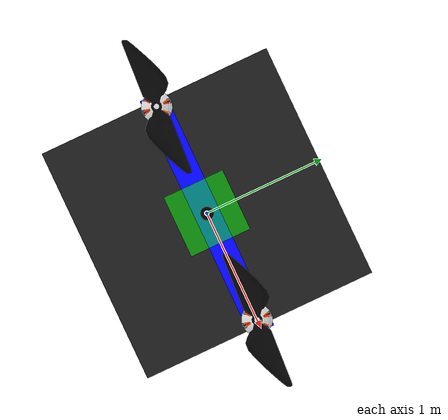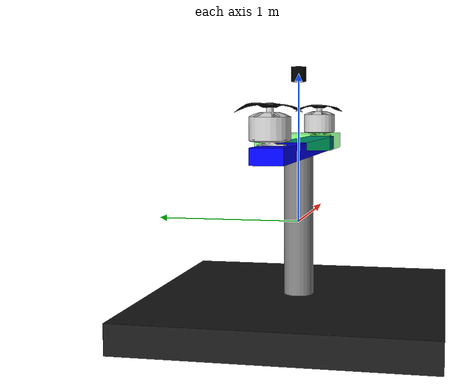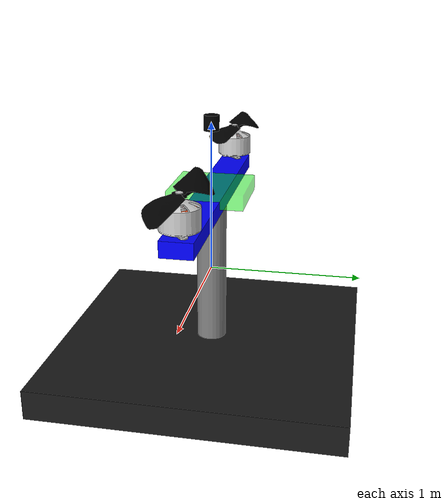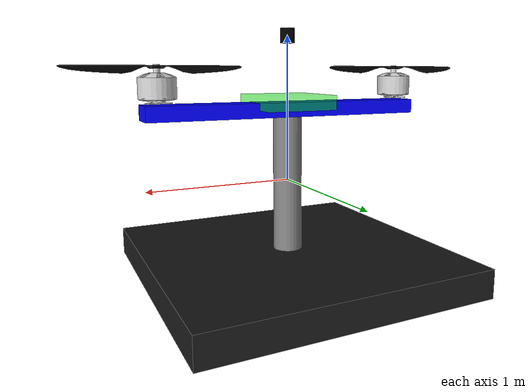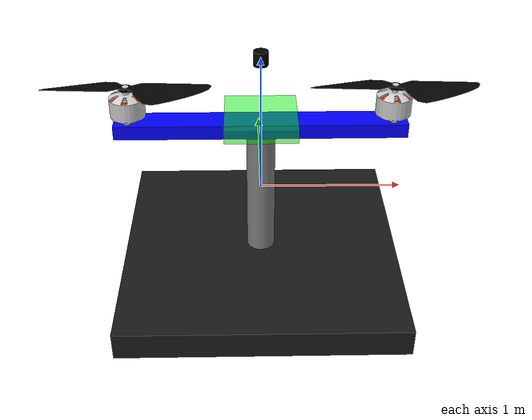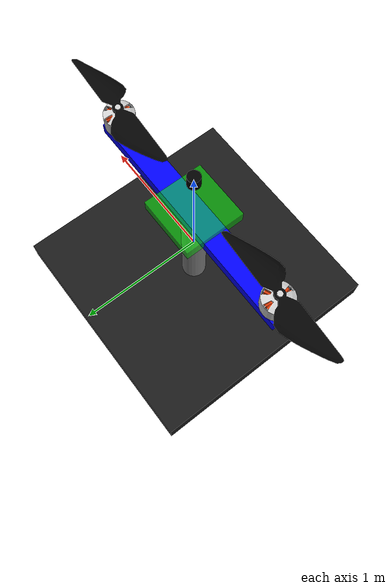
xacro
<?xml version="1.0"?>
<robot name="jungkat" xmlns:xacro="http://ros.org/wiki/xacro">

  <!-- Stabilizer -->
  <link name="beban_base">
    <visual>
      <origin xyz="0 0 -0.3" rpy="0 0 0"/>
      <geometry><box size="2 2 0.2"/></geometry>
      <material name="hitam"><color rgba="0.1 0.1 0.1 1"/></material>
    </visual>
    <collision>
      <origin xyz="0 0 -0.3" rpy="0 0 0"/>
      <geometry><box size="2 2 0.2"/></geometry>
    </collision>
    <inertial>
      <mass value="100"/>
      <inertia ixx="10" iyy="10" izz="10" ixy="0" ixz="0" iyz="0"/>
    </inertial>
  </link>

  <joint name="beban_fixed_joint" type="fixed">
    <parent link="base_link"/>
    <child link="beban_base"/>
    <origin xyz="0 0 -0.3" rpy="0 0 0"/>
  </joint>

  <!-- Base -->
  <link name="base_link">
    <visual>
      <origin xyz="0 0 0" rpy="0 0 0"/>
      <geometry><cylinder length="1" radius="0.1"/></geometry>
      <material name="gray"><color rgba="0.5 0.5 0.5 1"/></material>
    </visual>
    <collision>
      <origin xyz="0 0 0" rpy="0 0 0"/>
      <geometry><cylinder length="1" radius="0.1"/></geometry>
    </collision>
    <inertial>
      <mass value="1.0"/>
      <inertia ixx="1" iyy="1" izz="1" ixy="0" ixz="0" iyz="0"/>
    </inertial>
  </link>

  <gazebo reference="base_link">
    <static>true</static>
  </gazebo>

  <!-- Pivot Arm -->
  <link name="pivot_arm">
    <visual>
      <origin xyz="0 0 0.5" rpy="0 0 0"/>
      <geometry><cylinder radius="0.05" length="0.1"/></geometry>
      <material name="black"><color rgba="0 0 0 1"/></material>
    </visual>
    <collision>
      <origin xyz="0 0 0.6" rpy="0 0 0"/>
      <geometry><cylinder radius="0.05" length="0.1"/></geometry>
    </collision>
    <inertial>
      <mass value="0.1"/>
      <inertia ixx="0.001" iyy="0.001" izz="0.001" ixy="0" ixz="0" iyz="0"/>
    </inertial>
  </link>

  <joint name="pivot_connector" type="fixed">
    <parent link="base_link"/>
    <child link="pivot_arm"/>
    <origin xyz="0 0 0.5" rpy="0 0 0"/>
  </joint>

  <!-- Beam -->
  <link name="beam">
    <visual>
      <origin xyz="0 0 -0.05" rpy="0 0 0"/>
      <geometry><box size="2 0.2 0.1"/></geometry>
      <material name="blue"><color rgba="0 0 1 1"/></material>
    </visual>
    <collision>
      <origin xyz="0 0 -0.05" rpy="10.0 0 0"/>
      <geometry><box size="2 0.2 0.1"/></geometry>
    </collision>
    <inertial>
      <mass value="1.0"/>
      <inertia ixx="0.2" iyy="0.2" izz="0.2" ixy="0" ixz="0" iyz="0"/>
    </inertial>
  </link>

  <gazebo reference="beam">
    <plugin name="force_beam" filename="libgazebo_ros_force.so">
      <bodyName>beam</bodyName>
      <topicName>beam/force_left</topicName>
      <referenceFrame>world</referenceFrame>
      <force>0 0 10</force>
    </plugin>
    <plugin name="force_beam_right" filename="libgazebo_ros_force.so">
      <bodyName>beam</bodyName>
      <topicName>beam/force_right</topicName>
      <referenceFrame>world</referenceFrame>
      <force>0 0 -10</force>
    </plugin>
  </gazebo>

  <gazebo reference="beam">
    <plugin name="thrust_kiri" filename="libgazebo_ros_force.so">
      <bodyName>beam</bodyName>
      <topicName>beam/thrust_kiri</topicName>
      <referenceFrame>beam</referenceFrame>
      <xyzOffset>0.9 0 0</xyzOffset>
      <force>0 0 3000</force>
      <updateRate>50</updateRate>
    </plugin>
    <plugin name="thrust_kanan" filename="libgazebo_ros_force.so">
      <bodyName>beam</bodyName>
      <topicName>beam/thrust_kanan</topicName>
      <referenceFrame>beam</referenceFrame>
      <xyzOffset>-0.9 0 0</xyzOffset>
      <force>0 0 7000</force>
      <updateRate>50</updateRate>
    </plugin>
  </gazebo>

  <joint name="pivot_joint" type="revolute">
    <parent link="pivot_arm"/>
    <child link="beam"/>
    <origin xyz="0 0 0.05" rpy="0 0 0"/>
    <axis xyz="0 1 0"/>
    <limit effort="100" velocity="50" lower="-0.35" upper="0.35"/>
    <dynamics damping="0.01" friction="0.01"/>
  </joint>

  <gazebo>
    <plugin name="imu_plugin" filename="libgazebo_ros_imu.so">
      <alwaysOn>true</alwaysOn>
      <updateRate>50.0</updateRate>
      <bodyName>beam</bodyName>
      <topicName>imu/data</topicName>
      <gaussianNoise>0.01</gaussianNoise>
      <imuTopic>imu/data</imuTopic>
      <frameName>beam</frameName>
    </plugin>
  </gazebo>

  <gazebo>
    <plugin name="jungkat_jungkit_plugin" filename="libjungkat_jungkit_plugin.so">
      <pivot_joint>pivot_joint</pivot_joint>
    </plugin>
  </gazebo>

  <!-- Motor Kiri -->
  <link name="motor_kiri">
    <inertial>
      <mass value="0.3"/>
      <inertia ixx="0.0005" iyy="0.0005" izz="0.0005" ixy="0" ixz="0" iyz="0"/>
    </inertial>
  </link>

  <link name="motor_kiri_visual">
    <visual>
      <origin xyz="0 0 0.025" rpy="0 0 0"/>
      <geometry><mesh filename="package://task_1/meshes/motor1.dae" scale="0.5 0.5 0.5"/></geometry>
    </visual>
    <collision>
      <origin xyz="0 0 0" rpy="0 0 0"/>
      <geometry><box size="0.05 0.05 0.05"/></geometry>
    </collision>
  </link>

  <joint name="motor_kiri_joint" type="continuous">
    <parent link="beam"/>
    <child link="motor_kiri"/>
    <origin xyz="0.9 0 0" rpy="0 0 0"/>
    <axis xyz="0 0 1"/>
    <limit effort="10.0" velocity="10.0"/>
    <dynamics damping="0.0" friction="0.0"/>
  </joint>

  <gazebo reference="motor_kiri">
    <plugin name="force_kiri" filename="libgazebo_ros_force.so">
      <bodyName>motor_kiri</bodyName>
      <topicName>motor_kiri/thrust</topicName>
      <referenceFrame>motor_kiri</referenceFrame>
      <force>0 0 0</force>
    </plugin>
  </gazebo>

  <joint name="motor_kiri_visual_joint" type="fixed">
    <parent link="motor_kiri"/>
    <child link="motor_kiri_visual"/>
    <origin xyz="0 0 0" rpy="0 0 0"/>
  </joint>

  <!-- Lock yaw (Z axis) -->
  <joint name="yaw_lock" type="fixed">
    <parent link="beam"/>
    <child link="yaw_blocker"/>
    <origin xyz="0 0 0" rpy="0 0 0"/>
  </joint>
  <link name="yaw_blocker">
    <inertial>
      <mass value="2.0"/>
      <inertia ixx="0.01" iyy="0.01" izz="0.01" ixy="0" ixz="0" iyz="0"/>
    </inertial>
    <visual>
      <origin xyz="0 0 0" rpy="0 0 0"/>
      <geometry><box size="0.5 0.5 0.1"/></geometry>
      <material name="green"><color rgba="0 1 0 0.5"/></material>
    </visual>
    <collision>
      <origin xyz="0 0 0" rpy="0 0 0"/>
      <geometry><box size="0.5 0.5 0.1"/></geometry>
    </collision>
  </link>

  <!-- Motor Kanan -->
  <link name="motor_kanan">
    <inertial>
      <mass value="0.3"/>
      <inertia ixx="0.0005" iyy="0.0005" izz="0.0005" ixy="0" ixz="0" iyz="0"/>
    </inertial>
  </link>

  <link name="motor_kanan_visual">
    <visual>
      <origin xyz="0 0 0.025" rpy="0 0 0"/>
      <geometry><mesh filename="package://task_1/meshes/motor2.dae" scale="0.5 0.5 0.5"/></geometry>
    </visual>
    <collision>
      <origin xyz="0 0 0" rpy="0 0 0"/>
      <geometry><box size="0.05 0.05 0.05"/></geometry>
    </collision>
  </link>

  <joint name="motor_kanan_joint" type="continuous">
    <parent link="beam"/>
    <child link="motor_kanan"/>
    <origin xyz="-0.9 0 0" rpy="0 0 0"/>
    <axis xyz="0 0 -1"/>
    <limit effort="10.0" velocity="10.0"/>
    <dynamics damping="0.0" friction="0.0"/>
  </joint>

  <joint name="motor_kanan_visual_joint" type="fixed">
    <parent link="motor_kanan"/>
    <child link="motor_kanan_visual"/>
    <origin xyz="0 0 0" rpy="0 0 0"/>
  </joint>

  <gazebo reference="motor_kanan">
    <plugin name="force_kanan" filename="libgazebo_ros_force.so">
      <bodyName>motor_kanan</bodyName>
      <topicName>motor_kanan/thrust</topicName>
      <referenceFrame>motor_kanan</referenceFrame>
      <force>0 0 0</force>
    </plugin>
  </gazebo>

  <!-- Transmissions -->
  <transmission name="motor_kiri_trans">
    <type>transmission_interface/SimpleTransmission</type>
    <joint name="motor_kiri_joint">
      <hardwareInterface>hardware_interface/EffortJointInterface</hardwareInterface>
    </joint>
    <actuator name="motor_kiri_motor">
      <mechanicalReduction>1</mechanicalReduction>
    </actuator>
  </transmission>

  <transmission name="motor_kanan_trans">
    <type>transmission_interface/SimpleTransmission</type>
    <joint name="motor_kanan_joint">
      <hardwareInterface>hardware_interface/EffortJointInterface</hardwareInterface>
    </joint>
    <actuator name="motor_kanan_motor">
      <mechanicalReduction>1</mechanicalReduction>
    </actuator>
  </transmission>

  <transmission name="pivot_trans">
    <type>transmission_interface/SimpleTransmission</type>
    <joint name="pivot_joint">
      <hardwareInterface>hardware_interface/EffortJointInterface</hardwareInterface>
    </joint>
    <actuator name="pivot_motor">
      <mechanicalReduction>1</mechanicalReduction>
    </actuator>
  </transmission>

  <!-- Gazebo ROS control plugin -->
  <gazebo>
    <plugin name="gazebo_ros_control" filename="libgazebo_ros_control.so"/>
  </gazebo>

  <gazebo reference="motor_kiri_joint">
    <provideFeedback>true</provideFeedback>
  </gazebo>

  <gazebo reference="motor_kanan_joint">
    <provideFeedback>true</provideFeedback>
  </gazebo>

</robot>
